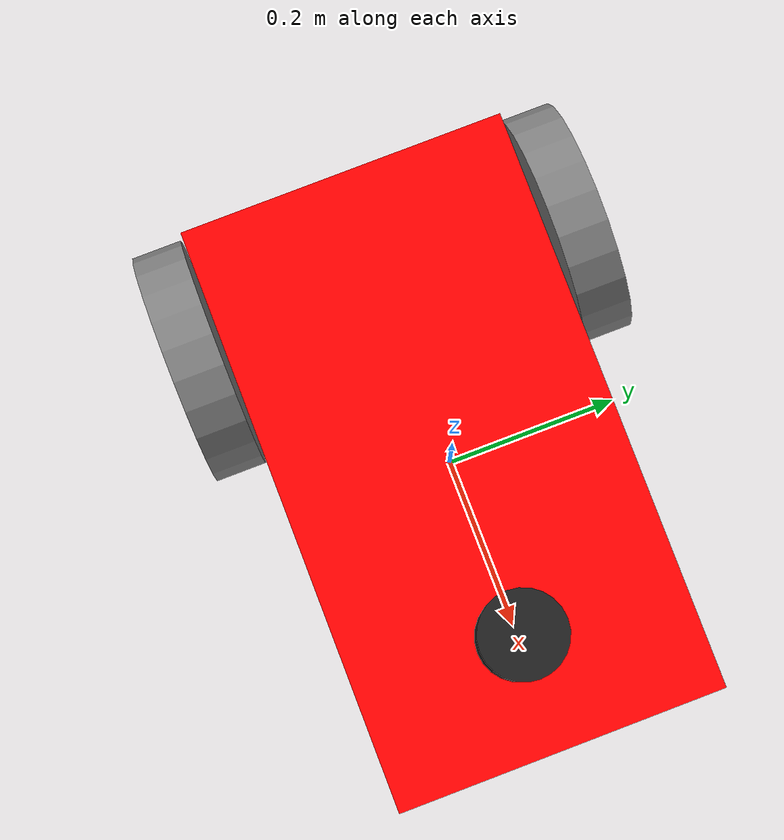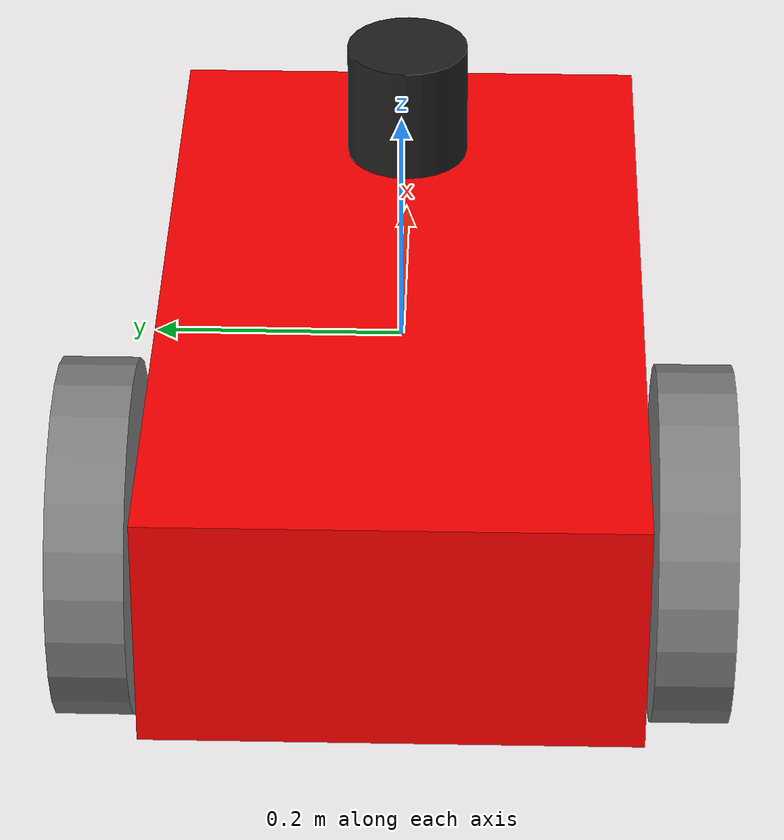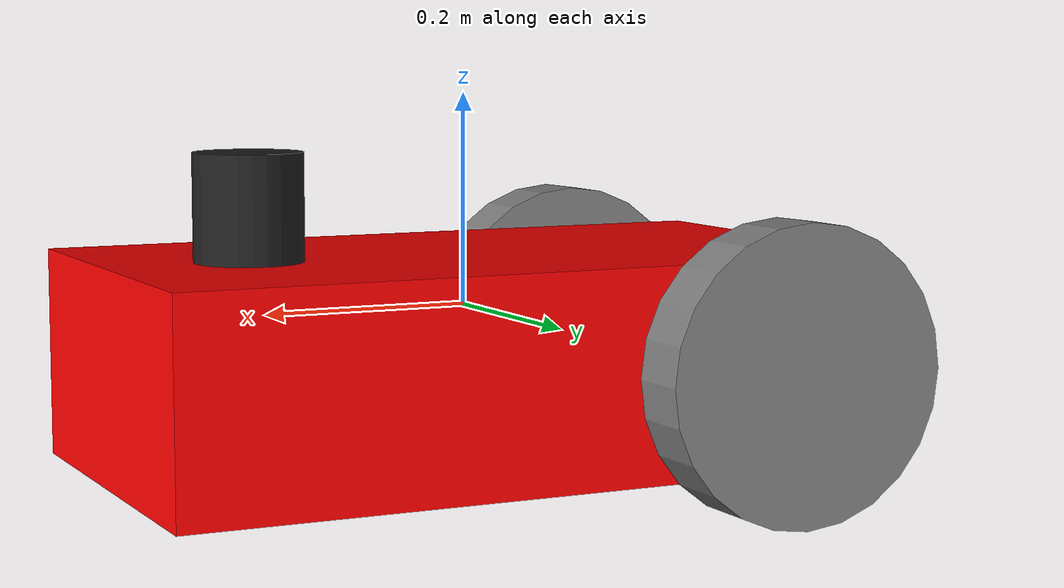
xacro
<?xml version="1.0"?>
<robot name="two_wheeled_robot" xmlns:xacro="http://ros.org/wiki/xacro">

  <!-- ****************** ROBOT CONSTANTS *******************************  -->
  <!-- Define the size of the robot's main chassis in meters -->
  <xacro:property name="base_width" value="0.39"/>
  <xacro:property name="base_length" value="0.70"/>
  <xacro:property name="base_height" value="0.20"/>

  <!-- Define the shape of the robot's two back wheels in meters -->
  <xacro:property name="wheel_radius" value="0.14"/>
  <xacro:property name="wheel_width" value="0.06"/>

  <!-- x-axis points forward, y-axis points to left, z-axis points upwards -->
  <!-- Define the gap between the wheel and chassis along y-axis in meters -->
  <xacro:property name="wheel_ygap" value="0.035"/>

  <!-- Position the wheels along the z-axis -->
  <xacro:property name="wheel_zoff" value="0.05"/>

  <!-- Position the wheels along the x-axis -->
  <xacro:property name="wheel_xoff" value="0.221"/>

  <!-- Position the caster wheel along the x-axis -->
  <xacro:property name="caster_xoff" value="0.217"/>

  <!-- Define intertial property macros  -->
  <xacro:macro name="box_inertia" params="m w h d">
    <inertial>
      <origin xyz="0 0 0" rpy="${pi/2} 0 ${pi/2}"/>
      <mass value="${m}"/>
      <inertia ixx="${(m/12) * (h*h + d*d)}" ixy="0.0" ixz="0.0" iyy="${(m/12) * (w*w + d*d)}" iyz="0.0" izz="${(m/12) * (w*w + h*h)}"/>
    </inertial>
  </xacro:macro>

  <xacro:macro name="cylinder_inertia" params="m r h">
    <inertial>
      <origin xyz="0 0 0" rpy="${pi/2} 0 0" />
      <mass value="${m}"/>
      <inertia ixx="${(m/12) * (3*r*r + h*h)}" ixy = "0" ixz = "0" iyy="${(m/12) * (3*r*r + h*h)}" iyz = "0" izz="${(m/2) * (r*r)}"/>
    </inertial>
  </xacro:macro>

  <xacro:macro name="sphere_inertia" params="m r">
    <inertial>
      <mass value="${m}"/>
      <inertia ixx="${(2/5) * m * (r*r)}" ixy="0.0" ixz="0.0" iyy="${(2/5) * m * (r*r)}" iyz="0.0" izz="${(2/5) * m * (r*r)}"/>
    </inertial>
  </xacro:macro>

  <!-- ********************** ROBOT BASE *********************************  -->
  <link name="base_link">
    <visual>
      <origin xyz="0 0 -0.05" rpy="1.5707963267949 0 3.141592654"/>
      <geometry>
        <box size="${base_length} ${base_height} ${base_width}"/>
      </geometry>
      <material name="Red">
        <color rgba="1.0 0.0 0.0 1.0"/>
      </material>
    </visual>

    <collision>
      <geometry>
        <box size="${base_length} ${base_height} ${base_width}"/>
      </geometry>
    </collision>

    <xacro:box_inertia m="15.0" w="${base_width}" d="${base_length}" h="${base_height}"/>
  </link>

  <gazebo reference="base_link">
    <material>Gazebo/Red</material>
  </gazebo>

  <!-- ****************** ROBOT BASE FOOTPRINT ***************************  -->
  <!-- Define the center of the main robot chassis projected on the ground -->
  <link name="base_footprint">
    <xacro:box_inertia m="0" w="0" d="0" h="0"/>
  </link>

  <!-- The base footprint of the robot is located underneath the chassis -->
  <joint name="base_joint" type="fixed">
    <parent link="base_link"/>
    <child link="base_footprint"/>
    <origin xyz="0.0 0.0 ${-(wheel_radius+wheel_zoff)}" rpy="0 0 0"/>
  </joint>

  <!-- *********************** DRIVE WHEELS ******************************  -->
  <xacro:macro name="wheel" params="prefix x_reflect y_reflect">
    <link name="${prefix}_link">
      <visual>
        <origin xyz="0 0 0" rpy="${pi/2} 0 0"/>
        <geometry>
            <cylinder radius="${wheel_radius}" length="${wheel_width}"/>
        </geometry>
        <material name="Gray">
          <color rgba="0.5 0.5 0.5 1.0"/>
        </material>
      </visual>

      <collision>
        <origin xyz="0 0 0" rpy="${pi/2} 0 0"/>
        <geometry>
          <cylinder radius="${wheel_radius}" length="${wheel_width}"/>
        </geometry>
      </collision>

      <xacro:cylinder_inertia m="0.5" r="${wheel_radius}" h="${wheel_width}"/>
    </link>

    <!-- Connect the wheels to the base_link at the appropriate location, and
         define a continuous joint to allow the wheels to freely rotate about
         an axis -->
    <joint name="${prefix}_joint" type="continuous">
      <parent link="base_link"/>
      <child link="${prefix}_link"/>
      <origin xyz="${x_reflect*wheel_xoff} ${y_reflect*(base_width/2+wheel_ygap)} ${-wheel_zoff}" rpy="0 0 0"/>
      <axis xyz="0 1 0"/>
    </joint>
  </xacro:macro>

  <xacro:wheel prefix="drivewhl_l" x_reflect="-1" y_reflect="1" />
  <xacro:wheel prefix="drivewhl_r" x_reflect="-1" y_reflect="-1" />

  <!-- *********************** CASTER WHEEL ******************************  -->
  <!-- We add a caster wheel. It will be modeled as sphere.
       We define the wheel’s geometry, material and the joint to connect it to
       base_link at the appropriate location. -->
  <link name="front_caster">
    <visual>
      <geometry>
        <sphere radius="${(wheel_radius+wheel_zoff-(base_height/2))}"/>
      </geometry>
      <material name="Cyan">
        <color rgba="0 1.0 1.0 1.0"/>
      </material>
    </visual>

    <collision>
      <origin xyz="0 0 0" rpy="0 0 0"/>
      <geometry>
        <sphere radius="${(wheel_radius+wheel_zoff-(base_height/2))}"/>
      </geometry>
    </collision>

    <xacro:sphere_inertia m="0.5" r="${(wheel_radius+wheel_zoff-(base_height/2))}"/>
  </link>

  <gazebo reference="front_caster">
    <mu1>0.01</mu1>
    <mu2>0.01</mu2>
    <material>Gazebo/White</material>
  </gazebo>

  <joint name="caster_joint" type="fixed">
    <parent link="base_link"/>
    <child link="front_caster"/>
    <origin xyz="${caster_xoff} 0.0 ${-(base_height/2)}" rpy="0 0 0"/>
  </joint>

  <!-- *********************** LIDAR SETUP **********************************  -->
 <link name="lidar_link">
    <inertial>
      <origin xyz="0 0 0" rpy="0 0 0"/>
      <mass value="0.125"/>
      <inertia ixx="0.0015"  ixy="0"  ixz="0" iyy="0.001" iyz="0" izz="0.001" />
    </inertial>

    <collision>
      <origin xyz="0 0 0" rpy="0 0 0"/>
      <geometry>
         <cylinder radius="0.0508" length="0.1"/>
      </geometry>
    </collision>

    <visual>
      <origin xyz="0 0 0" rpy="0 0 0"/>
      <geometry>
         <cylinder radius="0.0508" length="0.1"/>
      </geometry>
    </visual>
  </link>

  <joint name="lidar_joint" type="fixed">
    <parent link="base_link"/>
    <child link="lidar_link"/>
    <origin xyz="0.215 0.0 0.10" rpy="0 0 0"/>
  </joint>

  <gazebo reference="lidar_link">
    <sensor name="lidar" type="ray">
      <always_on>true</always_on>
      <visualize>true</visualize>
      <update_rate>5</update_rate>
      <ray>
        <scan>
          <horizontal>
            <samples>120</samples>
            <resolution>1.000000</resolution>
            <min_angle>-3.14159</min_angle>
            <max_angle>3.14159</max_angle>
          </horizontal>
        </scan>
        <range>
          <min>0.3</min>
          <max>15.0</max>
          <resolution>0.015</resolution>
        </range>
        <noise>
          <type>gaussian</type>
          <mean>0.0</mean>
          <stddev>0.01</stddev>
        </noise>
      </ray>
      <plugin name="scan" filename="libgazebo_ros_ray_sensor.so">
        <ros>
          <remapping>~/out:=scan</remapping>
        </ros>
        <output_type>sensor_msgs/LaserScan</output_type>
        <frame_name>lidar_link</frame_name>
      </plugin>
    </sensor>
  </gazebo>
  <gazebo reference="lidar_link">
    <mu1>0.01</mu1>
    <mu2>0.01</mu2>
    <material>Gazebo/Black</material>
  </gazebo>

</robot>
